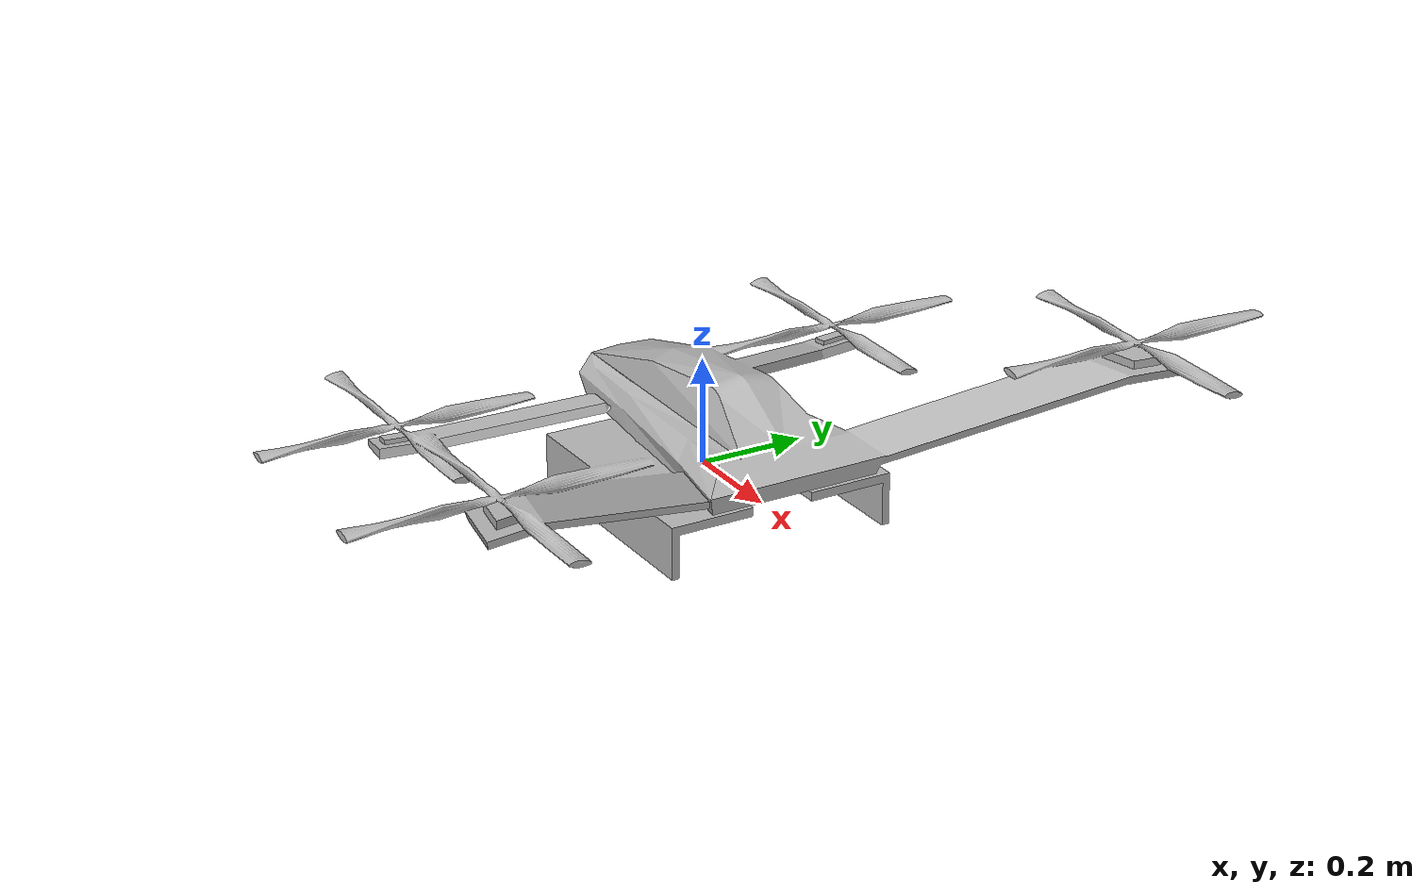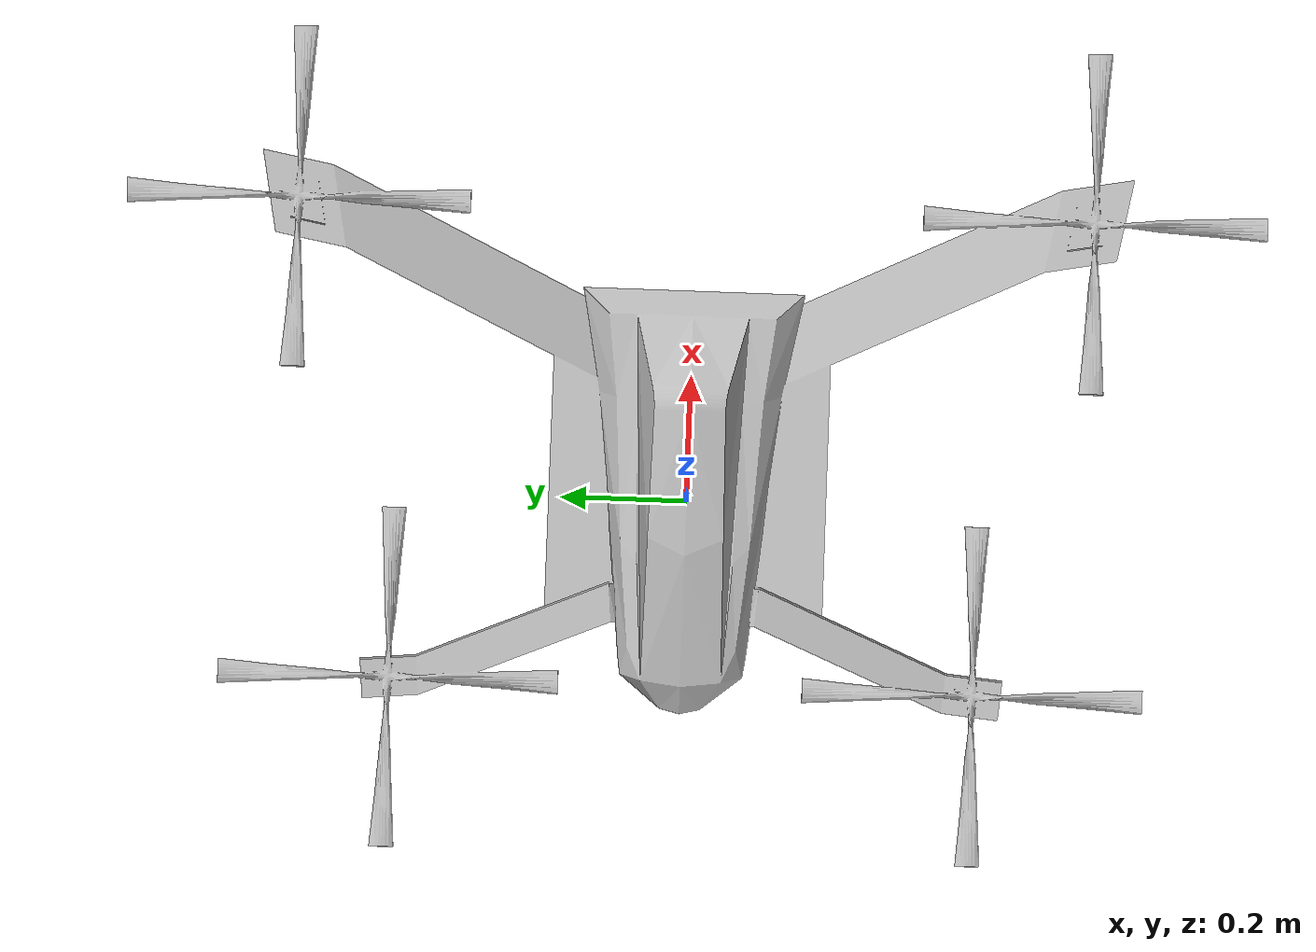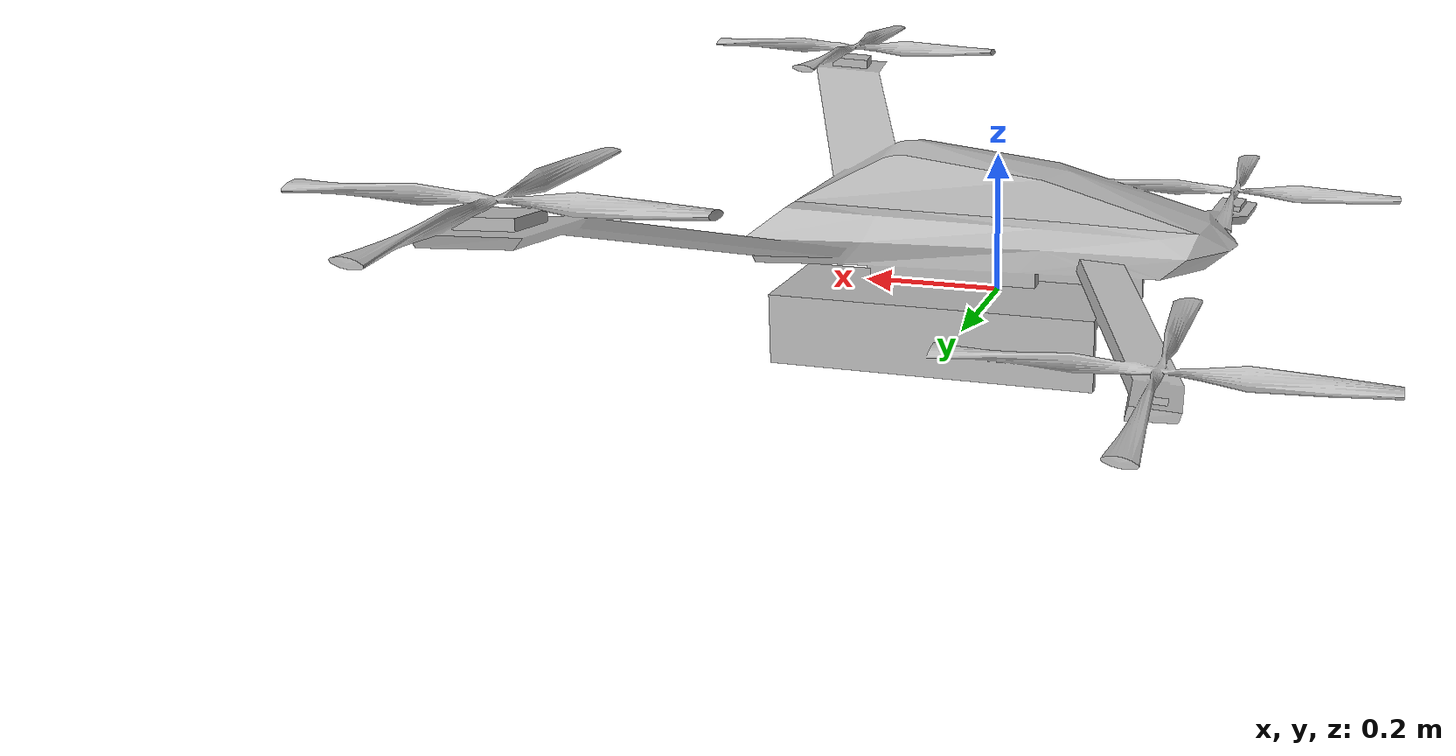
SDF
<?xml version="1.0" ?>
<sdf version="1.6">
  <model name="drone">
    <static>false</static>
    <link name="link">
      <collision name="collision">
        <geometry>
          <mesh>
            <uri>model://drone/meshes/drone.obj</uri>
          </mesh>
        </geometry>
      </collision>
      <visual name="visual">
        <geometry>
          <mesh>
            <uri>model://drone/meshes/drone.obj</uri>
          </mesh>
        </geometry>
      </visual>
    </link>
  </model>
</sdf>
